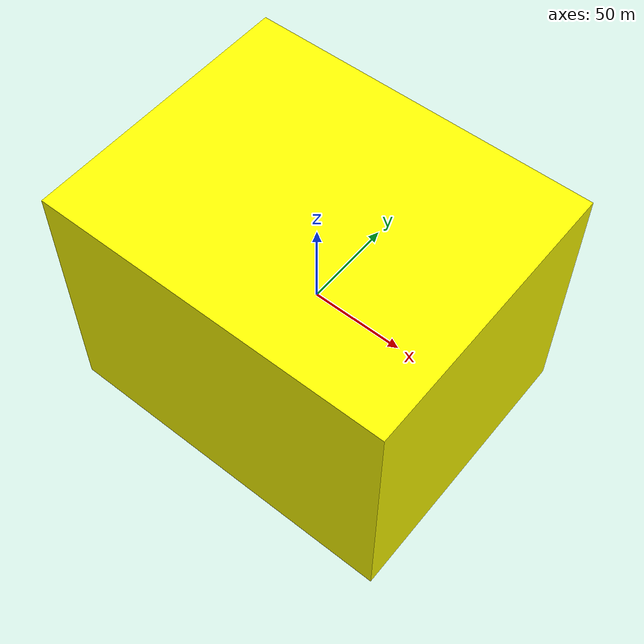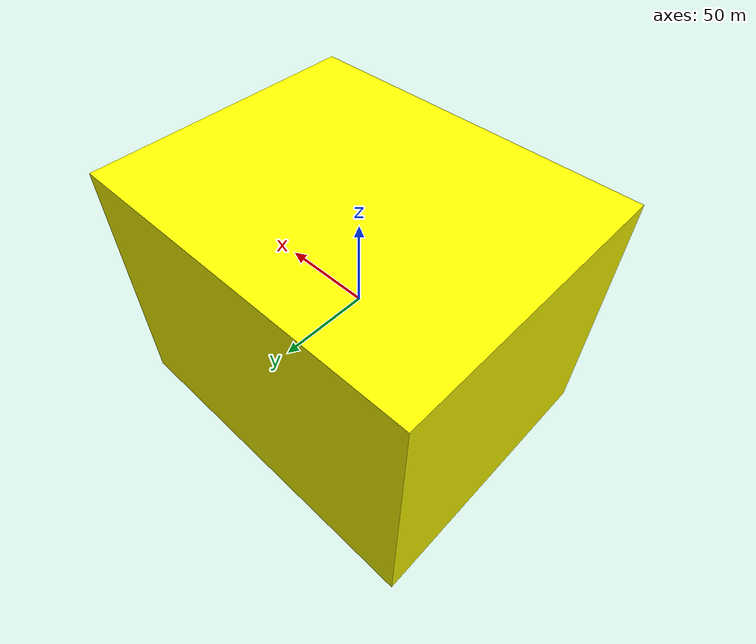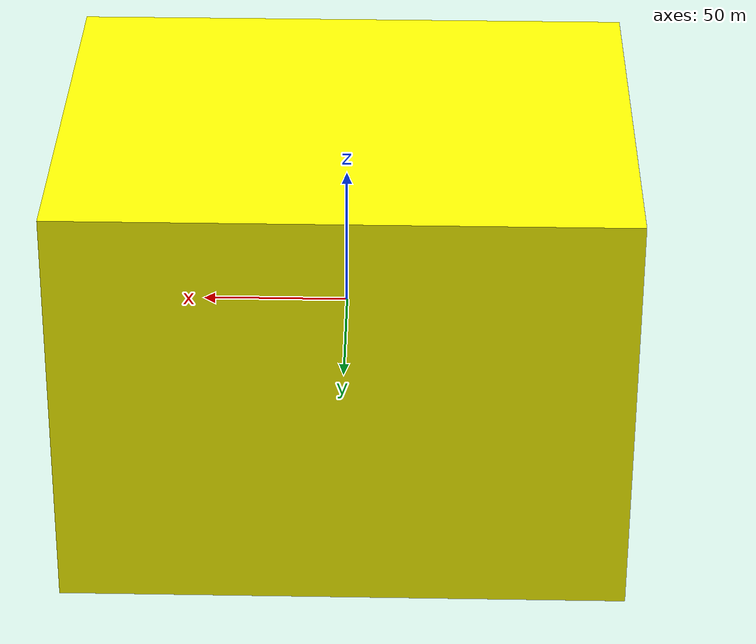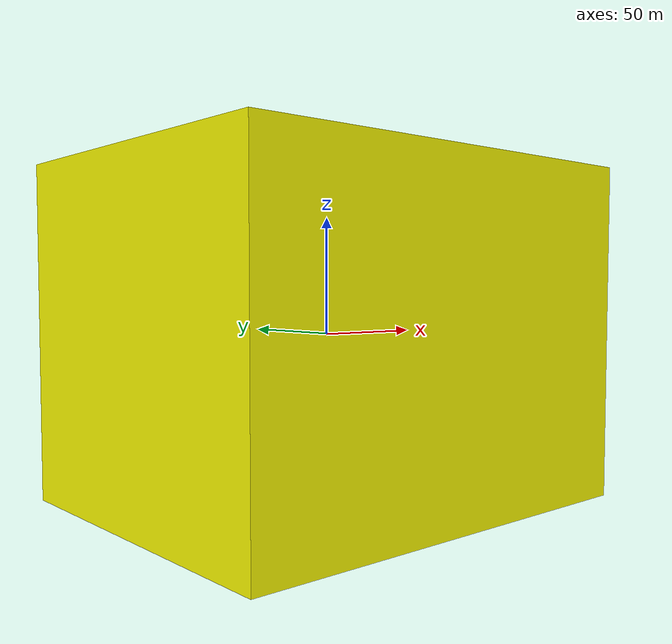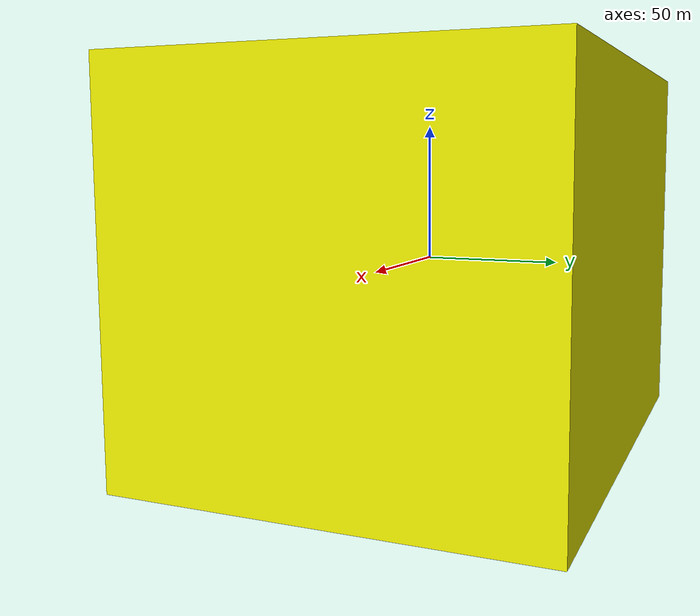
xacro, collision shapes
<?xml version="1.0"?>
<!-- TurtleBot3 Manipulation -->
<robot name="turtlebot3_gix" xmlns:xacro="http://www.ros.org/wiki/xacro">
  <xacro:arg name="prefix" default="" />
  <xacro:arg name="use_sim" default="false" />

  <xacro:arg name="use_fake_hardware" default="false" />
  <xacro:arg name="fake_sensor_commands" default="false" />

  <!-- Import materials macro -->
  <xacro:include filename="$(find turtlebot3_gix_description)/urdf/materials.xacro" />

  <!-- Include TurtleBot3 Burger urdf macro -->
  <xacro:include filename="$(find turtlebot3_gix_description)/urdf/turtlebot3_burger.urdf.xacro" />

  <!-- Include custom design urdf macro -->
  <xacro:include filename="$(find turtlebot3_gix_description)/urdf/gix_custom_add-on.urdf.xacro" />

  <!-- Include TurtleBot3 GIX ros2 control macro -->
  <xacro:include filename="$(find turtlebot3_gix_description)/ros2_control/turtlebot3_gix_system.ros2_control.xacro" />

  <xacro:turtlebot3_burger prefix="$(arg prefix)" />

  <!-- Used for fixing custom additions to TurtleBot3 -->
  <joint name="$(arg prefix)base_fixed" type="fixed">
    <parent link="$(arg prefix)base_link"/>
    <child link="$(arg prefix)box_body"/>
    <origin xyz="0.0 0.0 0.0" rpy="0 0 0"/>
  </joint>

  <xacro:gix_body prefix="$(arg prefix)" />

  <xacro:turtlebot3_gix_system
    name="turtlebot3_gix_system" prefix="$(arg prefix)" use_sim="$(arg use_sim)"
    use_fake_hardware="$(arg use_fake_hardware)"
    fake_sensor_commands="$(arg fake_sensor_commands)"/>

</robot>

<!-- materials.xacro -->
<!--
Copied from open_manipulator example -
https://github.com/ROBOTIS-GIT/open_manipulator/blob/foxy-devel/open_manipulator_x_description/urdf/materials.xacro
-->
<robot>

  <material name="black">
    <color rgba="0.0 0.0 0.0 1.0"/>
  </material>

  <material name="blue">
    <color rgba="0.0 0.0 0.8 1.0"/>
  </material>

  <material name="brown">
    <color rgba="0.8706 0.8118 0.7647 1.0"/>
  </material>

  <material name="dark">
    <color rgba="0.3 0.3 0.3 1.0"/>
  </material>

  <material name="green">
    <color rgba="0.0 0.8 0.0 1.0"/>
  </material>

  <material name="grey">
    <color rgba="0.5 0.5 0.5 1.0"/>
  </material>

  <material name="light_black">
    <color rgba="0.4 0.4 0.4 1.0"/>
  </material>

  <material name="orange">
    <color rgba="1.0 0.4235 0.0392 1.0"/>
  </material>

  <material name="red">
    <color rgba="0.8 0.0 0.0 1.0"/>
  </material>

  <material name="white">
    <color rgba="1.0 1.0 1.0 1.0"/>
  </material>

  <material name="yellow">
    <color rgba="1.0 1.0 0.0 1.0"/>
  </material>

</robot>

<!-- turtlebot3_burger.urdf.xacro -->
<robot xmlns:xacro="http://ros.org/wiki/xacro">

  <xacro:macro name="turtlebot3_burger" params="prefix">

  <xacro:property
    name="meshes_file_direction"
    value="package://turtlebot3_gix_description/meshes/turtlebot3_burger"/>

  <link name="${prefix}base_footprint"/>

  <joint name="${prefix}base_joint" type="fixed">
    <parent link="${prefix}base_footprint"/>
    <child link="${prefix}base_link"/>
    <origin xyz="0.0 0.0 0.010" rpy="0 0 0"/>
  </joint>

  <link name="${prefix}base_link">
    <visual>
      <origin xyz="-0.032 0 0.0" rpy="0 0 0"/>
      <geometry>
        <mesh filename="${meshes_file_direction}/base.stl" scale="0.001 0.001 0.001"/>
      </geometry>
      <material name="light_black"/>
    </visual>

    <collision>
      <origin xyz="-0.032 0 0.070" rpy="0 0 0"/>
      <geometry>
        <box size="0.140 0.140 0.143"/>
      </geometry>
    </collision>

    <inertial>
      <origin xyz="0 0 0" rpy="0 0 0"/>
      <mass value="8.2573504e-01"/>
      <inertia ixx="2.2124416e-03" ixy="-1.2294101e-05" ixz="3.4938785e-05" iyy="2.1193702e-03" iyz="-5.0120904e-06" izz="2.0064271e-03" />
    </inertial>
  </link>

  <joint name="${prefix}wheel_left_joint" type="continuous">
    <parent link="${prefix}base_link"/>
    <child link="${prefix}wheel_left_link"/>
    <origin xyz="0.0 0.08 0.023" rpy="-1.57 0 0"/>
    <axis xyz="0 0 1"/>
  </joint>

  <link name="${prefix}wheel_left_link">
    <visual>
      <origin xyz="0 0 0" rpy="1.57 0 0"/>
      <geometry>
        <mesh filename="${meshes_file_direction}/left_tire.stl" scale="0.001 0.001 0.001"/>
      </geometry>
      <material name="dark"/>
    </visual>

    <collision>
      <origin xyz="0 0 0" rpy="0 0 0"/>
      <geometry>
        <cylinder length="0.018" radius="0.033"/>
      </geometry>
    </collision>

    <inertial>
      <origin xyz="0 0 0" />
      <mass value="2.8498940e-02" />
      <inertia ixx="1.1175580e-05" ixy="-4.2369783e-11" ixz="-5.9381719e-09" iyy="1.1192413e-05" iyz="-1.4400107e-11" izz="2.0712558e-05" />
    </inertial>
  </link>

  <joint name="${prefix}wheel_right_joint" type="continuous">
    <parent link="${prefix}base_link"/>
    <child link="${prefix}wheel_right_link"/>
    <origin xyz="0.0 -0.080 0.023" rpy="-1.57 0 0"/>
    <axis xyz="0 0 1"/>
  </joint>

  <link name="${prefix}wheel_right_link">
    <visual>
      <origin xyz="0 0 0" rpy="1.57 0 0"/>
      <geometry>
        <mesh filename="${meshes_file_direction}/right_tire.stl" scale="0.001 0.001 0.001"/>
      </geometry>
      <material name="dark"/>
    </visual>

    <collision>
      <origin xyz="0 0 0" rpy="0 0 0"/>
      <geometry>
        <cylinder length="0.018" radius="0.033"/>
      </geometry>
    </collision>

    <inertial>
      <origin xyz="0 0 0" />
      <mass value="2.8498940e-02" />
      <inertia ixx="1.1175580e-05" ixy="-4.2369783e-11" ixz="-5.9381719e-09" iyy="1.1192413e-05" iyz="-1.4400107e-11" izz="2.0712558e-05" />
    </inertial>
  </link>

  <joint name="${prefix}caster_back_joint" type="fixed">
    <parent link="${prefix}base_link"/>
    <child link="${prefix}caster_back_link"/>
    <origin xyz="-0.081 0 -0.004" rpy="-1.57 0 0"/>
  </joint>

  <link name="${prefix}caster_back_link">
    <collision>
      <origin xyz="0 0.001 0" rpy="0 0 0"/>
      <geometry>
        <box size="0.030 0.009 0.020"/>
      </geometry>
    </collision>

    <inertial>
      <origin xyz="0 0 0" />
      <mass value="0.005" />
      <inertia ixx="0.001" ixy="0.0" ixz="0.0" iyy="0.001" iyz="0.0" izz="0.001" />
    </inertial>
  </link>

  <joint name="${prefix}imu_joint" type="fixed">
    <parent link="${prefix}base_link"/>
    <child link="${prefix}imu_link"/>
    <origin xyz="-0.032 0 0.068" rpy="0 0 0"/>
  </joint>

  <link name="${prefix}imu_link"/>

  <joint name="${prefix}scan_joint" type="fixed">
    <parent link="${prefix}base_link"/>
    <child link="${prefix}base_scan"/>
    <origin xyz="-0.032 0 0.172" rpy="0 0 0"/>
  </joint>

  <link name="${prefix}base_scan">
    <visual>
      <origin xyz="0 0 0.0" rpy="0 0 0"/>
      <geometry>
        <mesh filename="${meshes_file_direction}/ladar.stl" scale="0.001 0.001 0.001"/>
      </geometry>
      <material name="dark"/>
    </visual>

    <collision>
      <origin xyz="0.015 0 -0.0065" rpy="0 0 0"/>
      <geometry>
        <cylinder length="0.0315" radius="0.055"/>
      </geometry>
    </collision>

    <inertial>
      <mass value="0.114" />
      <origin xyz="0 0 0" />
      <inertia ixx="0.001" ixy="0.0" ixz="0.0" iyy="0.001" iyz="0.0" izz="0.001" />
    </inertial>
  </link>

  </xacro:macro>

</robot>

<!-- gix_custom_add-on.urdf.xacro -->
<!-- OpenManipulator-X -->
<!--
Copied and modified from open_manipulator-x example -
https://github.com/ROBOTIS-GIT/open_manipulator/blob/kinetic-devel/open_manipulator_description/urdf/open_manipulator.urdf.xacro
-->
<robot xmlns:xacro="http://www.ros.org/wiki/xacro">
  <xacro:macro name="gix_body" params="prefix">
    <link name="${prefix}box_body">
      <visual>
        <origin xyz="-0.01 0 0.072" rpy="0 0 0"/>
        <geometry>
          <box size="0.192 0.154 0.144"/>
        </geometry>
        <material name="yellow"/>
      </visual>
      <collision>
        <origin xyz="-0.01 0 0.072" rpy="0 0 0"/>
        <geometry>
          <box size="192.0 154.0 144.0"/>
        </geometry>
      </collision>
    </link>
  </xacro:macro>
</robot>
